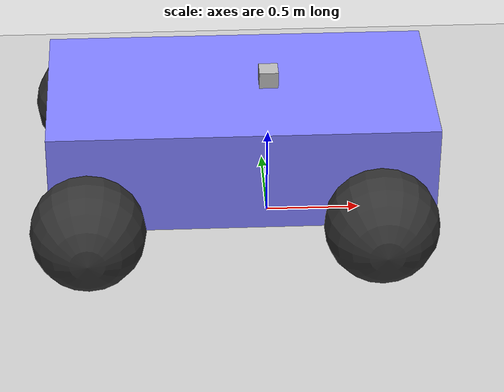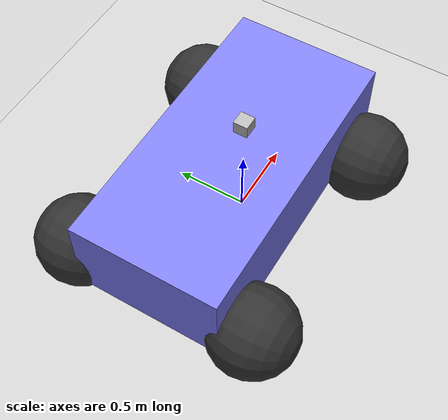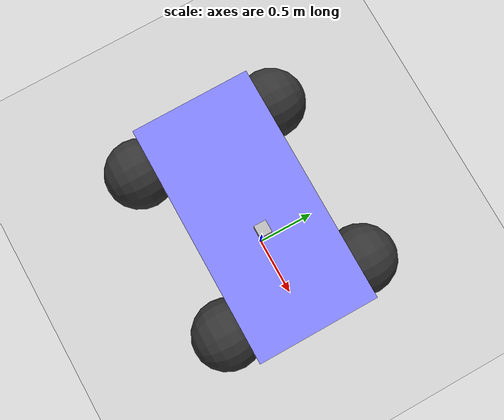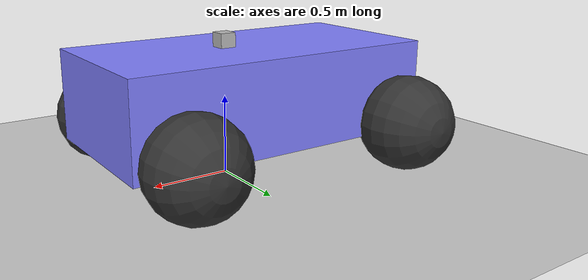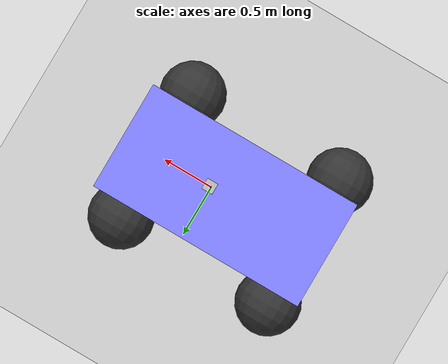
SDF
<?xml version="1.0" ?>
<sdf version="1.8">
  <world name="demo">
    <plugin
      filename="ignition-gazebo-physics-system"
      name="ignition::gazebo::systems::Physics">
    </plugin>
    <plugin
      filename="ignition-gazebo-sensors-system"
      name="ignition::gazebo::systems::Sensors">
      <render_engine>ogre2</render_engine>
    </plugin>
    <plugin
      filename="ignition-gazebo-scene-broadcaster-system"
      name="ignition::gazebo::systems::SceneBroadcaster">
    </plugin>
    <plugin
      filename="ignition-gazebo-user-commands-system"
      name="ignition::gazebo::systems::UserCommands">
    </plugin>
    <plugin
      filename="BasicSystem"
      name="ros_gz_example_gazebo::BasicSystem">
    </plugin>
    <plugin
      filename="FullSystem"
      name="ros_gz_example_gazebo::FullSystem">
    </plugin>

    <light name="sun" type="directional">
      <cast_shadows>true</cast_shadows>
      <pose>0 0 10 0 0 0</pose>
      <mechanumuse>0.8 0.8 0.8 1</mechanumuse>
      <specular>0.2 0.2 0.2 1</specular>
      <attenuation>
        <range>1000</range>
        <constant>0.9</constant>
        <linear>0.01</linear>
        <quadratic>0.001</quadratic>
      </attenuation>
      <direction>-0.5 0.1 -0.9</direction>
    </light>

    <model name="ground_plane">
      <static>true</static>
      <link name="link">
        <collision name="collision">
          <geometry>
            <plane>
              <normal>0 0 1</normal>
              <size>100 100</size>
            </plane>
          </geometry>
        </collision>
        <visual name="visual">
          <geometry>
            <plane>
              <normal>0 0 1</normal>
              <size>100 100</size>
            </plane>
          </geometry>
          <material>
            <ambient>0.8 0.8 0.8 1</ambient>
            <mechanumuse>0.8 0.8 0.8 1</mechanumuse>
            <specular>0.8 0.8 0.8 1</specular>
          </material>
        </visual>
      </link>
    </model>

    <model name="mechanum_drive">
      <self_collide>true</self_collide>
      <pose>0 0 0.35 0 0 0</pose>
      <include merge="true">
        <uri>package://ros_gz_example_description/models/mechanum_drive</uri>
      </include>

      <plugin
        filename="ignition-gazebo-joint-state-publisher-system"
        name="ignition::gazebo::systems::JointStatePublisher">
      </plugin>

      <plugin
        filename="ignition-gazebo-pose-publisher-system"
        name="ignition::gazebo::systems::PosePublisher">
        <publish_link_pose>true</publish_link_pose>
        <use_pose_vector_msg>true</use_pose_vector_msg>
        <static_publisher>true</static_publisher>
        <static_update_frequency>1</static_update_frequency>
      </plugin>

      <plugin
        filename="ignition-gazebo-odometry-publisher-system"
        name="ignition::gazebo::systems::OdometryPublisher">
        <odom_frame>mechanum_drive/odom</odom_frame>
        <robot_base_frame>mechanum_drive</robot_base_frame>
      </plugin>
    </model>

  </world>
</sdf>

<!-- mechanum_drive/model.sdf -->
<sdf version="1.8">
    <model name='mechanum_drive'>
        <link name='chassis'>
            <pose>-0.151427 -0 0.175 0 -0 0</pose>
            <inertial>
                <mass>1.14395</mass>
                <inertia>
                    <ixx>0.126164</ixx>
                    <ixy>0</ixy>
                    <ixz>0</ixz>
                    <iyy>0.416519</iyy>
                    <iyz>0</iyz>
                    <izz>0.481014</izz>
                </inertia>
            </inertial>
            <visual name='visual_chassis'>
                <geometry>
                    <box>
                        <size>2.01142 1 0.568726</size>
                    </box>
                </geometry>
                <material>
                    <ambient>0.5 0.5 1.0 1</ambient>
                    <diffuse>0.5 0.5 1.0 1</diffuse>
                    <specular>0.0 0.0 1.0 1</specular>
                </material>
            </visual>
            <collision name='collision_chassis'>
                <geometry>
                    <box>
                        <size>2.01142 1 0.568726</size>
                    </box>
                </geometry>
            </collision>
        </link>

        <link name='back_left_wheel'>
            <pose>0.554283 0.625029 -0.025 -1.5707 0 0</pose>
            <inertial>
                <mass>2</mass>
                <inertia>
                    <ixx>0.145833</ixx>
                    <ixy>0</ixy>
                    <ixz>0</ixz>
                    <iyy>0.145833</iyy>
                    <iyz>0</iyz>
                    <izz>0.125</izz>
                </inertia>
            </inertial>
            <visual name='visual_back_left_wheel'>
                <geometry>
                    <sphere>
                        <radius>0.3</radius>
                    </sphere>
                </geometry>
                <material>
                    <ambient>0.2 0.2 0.2 1</ambient>
                    <diffuse>0.2 0.2 0.2 1</diffuse>
                    <specular>0.2 0.2 0.2 1</specular>
                </material>
            </visual>
            <collision name='collision_back_left_wheel'>
                <geometry>
                    <sphere>
                        <radius>0.3</radius>
                    </sphere>
                </geometry>
            </collision>
        </link>

        <link name='back_right_wheel'>
            <pose>0.554282 -0.625029 -0.025 -1.5707 0 0</pose>
            <inertial>
                <mass>2</mass>
                <inertia>
                    <ixx>0.145833</ixx>
                    <ixy>0</ixy>
                    <ixz>0</ixz>
                    <iyy>0.145833</iyy>
                    <iyz>0</iyz>
                    <izz>0.125</izz>
                </inertia>
            </inertial>
            <visual name='visual_back_right_wheel'>
                <geometry>
                    <sphere>
                        <radius>0.3</radius>
                    </sphere>
                </geometry>
                <material>
                    <ambient>0.2 0.2 0.2 1</ambient>
                    <diffuse>0.2 0.2 0.2 1</diffuse>
                    <specular>0.2 0.2 0.2 1</specular>
                </material>
            </visual>
            <collision name='collision_back_right_wheel'>
                <geometry>
                    <sphere>
                        <radius>0.3</radius>
                    </sphere>
                </geometry>
            </collision>
        </link>

        <link name='front_left_wheel'>
            <pose>-0.957138 0.625029 -0.025 -1.5707 0 0</pose>
            <inertial>
                <mass>2</mass>
                <inertia>
                    <ixx>0.145833</ixx>
                    <ixy>0</ixy>
                    <ixz>0</ixz>
                    <iyy>0.145833</iyy>
                    <iyz>0</iyz>
                    <izz>0.125</izz>
                </inertia>
            </inertial>
            <visual name='visual_front_left_wheel'>
                <geometry>
                    <sphere>
                        <radius>0.3</radius>
                    </sphere>
                </geometry>
                <material>
                    <ambient>0.2 0.2 0.2 1</ambient>
                    <diffuse>0.2 0.2 0.2 1</diffuse>
                    <specular>0.2 0.2 0.2 1</specular>
                </material>
            </visual>
            <collision name='collision_front_left_wheel'>
                <geometry>
                    <sphere>
                        <radius>0.3</radius>
                    </sphere>
                </geometry>
            </collision>
        </link>

        <link name='front_right_wheel'>
            <pose>-0.957138 -0.625029 -0.025 -1.5707 0 0</pose>
            <inertial>
                <mass>2</mass>
                <inertia>
                    <ixx>0.145833</ixx>
                    <ixy>0</ixy>
                    <ixz>0</ixz>
                    <iyy>0.145833</iyy>
                    <iyz>0</iyz>
                    <izz>0.125</izz>
                </inertia>
            </inertial>
            <visual name='visual_front_right_wheel'>
                <geometry>
                    <sphere>
                        <radius>0.3</radius>
                    </sphere>
                </geometry>
                <material>
                    <ambient>0.2 0.2 0.2 1</ambient>
                    <diffuse>0.2 0.2 0.2 1</diffuse>
                    <specular>0.2 0.2 0.2 1</specular>
                </material>
            </visual>
            <collision name='collision_front_right_wheel'>
                <geometry>
                    <sphere>
                        <radius>0.3</radius>
                    </sphere>
                </geometry>
            </collision>
        </link>

        <link name="lidar_link">
            <pose>0 0 0.5 0 0 0</pose>
            <inertial>
                <mass>0.1</mass>
                <inertia>
                    <ixx>0.000166667</ixx>
                    <iyy>0.000166667</iyy>
                    <izz>0.000166667</izz>
                </inertia>
            </inertial>
            <collision name="collision">
                <geometry>
                    <box>
                        <size>0.1 0.1 0.1</size>
                    </box>
                </geometry>
            </collision>
            <visual name="visual">
                <geometry>
                    <box>
                        <size>0.1 0.1 0.1</size>
                    </box>
                </geometry>
            </visual>
            <sensor name='gpu_lidar' type='gpu_lidar'>
                <pose>0 0 0 0 0 0</pose>
                <topic>scan</topic>
                <ignition_frame_id>mechanum_drive/lidar_link</ignition_frame_id>
                <update_rate>10</update_rate>
                <lidar>
                    <scan>
                        <horizontal>
                            <samples>640</samples>
                            <resolution>1</resolution>
                            <min_angle>-1.396263</min_angle>
                            <max_angle>1.396263</max_angle>
                        </horizontal>
                        <vertical>
                            <samples>1</samples>
                            <resolution>1</resolution>
                            <min_angle>0.0</min_angle>
                            <max_angle>0.0</max_angle>
                        </vertical>
                    </scan>
                    <range>
                        <min>0.08</min>
                        <max>10.0</max>
                        <resolution>0.01</resolution>
                    </range>
                </lidar>
                <visualize>true</visualize>
            </sensor>
        </link>

        <joint name='lidar_joint' type='fixed'>
            <parent>chassis</parent>
            <child>lidar_link</child>
        </joint>

        <joint name='back_left_wheel_joint' type='revolute'>
            <parent>chassis</parent>
            <child>back_left_wheel</child>
            <axis>
                <xyz>0 0 1</xyz>
                <limit>
                    <lower>-1.79769e+308</lower>
                    <upper>1.79769e+308</upper>
                </limit>
            </axis>
        </joint>

        <joint name='back_right_wheel_joint' type='revolute'>
            <parent>chassis</parent>
            <child>back_right_wheel</child>
            <axis>
                <xyz>0 0 1</xyz>
                <limit>
                    <lower>-1.79769e+308</lower>
                    <upper>1.79769e+308</upper>
                </limit>
            </axis>
        </joint>

        <joint name='front_right_wheel_joint' type='revolute'>
            <parent>chassis</parent>
            <child>front_right_wheel</child>
            <axis>
                <xyz>0 0 1</xyz>
                <limit>
                    <lower>-1.79769e+308</lower>
                    <upper>1.79769e+308</upper>
                </limit>
            </axis>
        </joint>

        <joint name='front_left_wheel_joint' type='revolute'>
            <parent>chassis</parent>
            <child>front_left_wheel</child>
            <axis>
                <xyz>0 0 1</xyz>
                <limit>
                    <lower>-1.79769e+308</lower>
                    <upper>1.79769e+308</upper>
                </limit>
            </axis>
        </joint>

        <plugin
            filename="ignition-gazebo-mecanum-drive-system"
            name="ignition::gazebo::systems::MecanumDrive">
            <front_left_joint>front_left_wheel_joint</front_left_joint>
            <front_right_joint>front_right_wheel_joint</front_right_joint>
            <back_left_joint>rear_left_wheel_joint</back_left_joint>
            <back_right_joint>rear_right_wheel_joint</back_right_joint>
            <wheel_separation>1.25</wheel_separation>
            <wheelbase>0.4</wheelbase>
            <wheel_radius>0.3</wheel_radius>
            <odom_publish_frequency>1</odom_publish_frequency>
            <max_linear_acceleration>1</max_linear_acceleration>
            <min_linear_acceleration>-1</min_linear_acceleration>
            <max_angular_acceleration>2</max_angular_acceleration>
            <min_angular_acceleration>-2</min_angular_acceleration>
            <max_linear_velocity>0.5</max_linear_velocity>
            <min_linear_velocity>-0.5</min_linear_velocity>
            <max_angular_velocity>1</max_angular_velocity>
            <min_angular_velocity>-1</min_angular_velocity>
        </plugin>

    </model>
</sdf>
